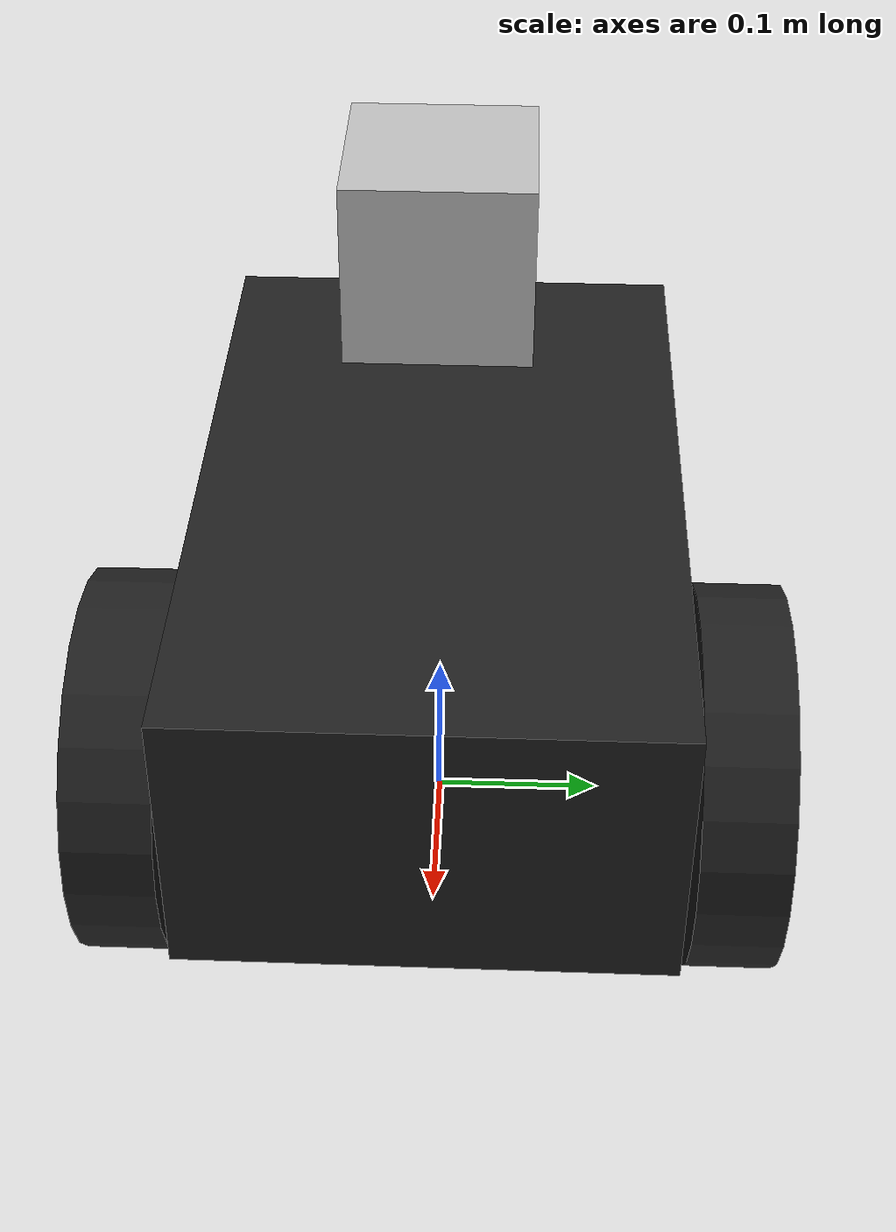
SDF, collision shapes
<?xml version='1.0'?>
<sdf version='1.6'>
  <model name="my_robot">
     <static>false</static>
     <link name='chassis'>
      <pose frame=''>-0 -0 0.16 0 -0 0</pose>
      <inertial>
        <mass>3.6</mass>
        <inertia>
          <ixx>0</ixx>
          <iyy>0</iyy>
          <izz>0</izz>
          <ixy>0</ixy>
          <ixz>0</ixz>
          <iyz>0</iyz>
        </inertia>
      </inertial>
      <self_collide>0</self_collide>
      <kinematic>0</kinematic>
      <visual name='castor_visual'>
        <pose frame=''>-0.2 0 -0.12 0 -0 0</pose>
        <geometry>
          <sphere>
            <radius>0.04</radius>
          </sphere>
        </geometry>
        <material>
          <script>
            <uri>file://media/materials/scripts/gazebo.material</uri>
            <name>Gazebo/FlatBlack</name>
          </script>
          <ambient>0.1 0.1 0.1 1</ambient>
          <diffuse>0.1 0.1 0.1 1</diffuse>
          <specular>0.01 0.01 0.01 1</specular>
          <emissive>0 0 0 1</emissive>
        </material>
        <transparency>0</transparency>
        <cast_shadows>1</cast_shadows>
      </visual>
      <visual name='visual'>
        <pose frame=''>0 0 0.04 0 -0 0</pose>
        <geometry>
          <mesh>
            <uri>model://pioneer2dx/meshes/chassis.dae</uri>
          </mesh>
        </geometry>
        <cast_shadows>1</cast_shadows>
        <transparency>0</transparency>
      </visual>
      <collision name='castor_collision'>
        <laser_retro>0</laser_retro>
        <max_contacts>10</max_contacts>
        <pose frame=''>-0.2 0 -0.12 0 -0 0</pose>
        <geometry>
          <sphere>
            <radius>0.04</radius>
          </sphere>
        </geometry>
        <surface>
          <friction>
            <ode>
              <mu>0</mu>
              <mu2>0</mu2>
              <fdir1>0 0 0</fdir1>
              <slip1>1</slip1>
              <slip2>1</slip2>
            </ode>
            <torsional>
              <coefficient>1</coefficient>
              <patch_radius>0</patch_radius>
              <surface_radius>0</surface_radius>
              <use_patch_radius>1</use_patch_radius>
              <ode>
                <slip>0</slip>
              </ode>
            </torsional>
          </friction>
          <bounce>
            <restitution_coefficient>0</restitution_coefficient>
            <threshold>1e+06</threshold>
          </bounce>
          <contact>
            <collide_without_contact>0</collide_without_contact>
            <collide_without_contact_bitmask>1</collide_without_contact_bitmask>
            <collide_bitmask>1</collide_bitmask>
            <ode>
              <soft_cfm>0</soft_cfm>
              <soft_erp>0.2</soft_erp>
              <kp>1e+13</kp>
              <kd>1</kd>
              <max_vel>0.01</max_vel>
              <min_depth>0</min_depth>
            </ode>
            <bullet>
              <split_impulse>1</split_impulse>
              <split_impulse_penetration_threshold>-0.01</split_impulse_penetration_threshold>
              <soft_cfm>0</soft_cfm>
              <soft_erp>0.2</soft_erp>
              <kp>1e+13</kp>
              <kd>1</kd>
            </bullet>
          </contact>
        </surface>
      </collision>
      <collision name='collision'>
        <laser_retro>0</laser_retro>
        <max_contacts>10</max_contacts>
        <pose frame=''>0 0 0 0 -0 0</pose>
        <geometry>
          <box>
            <size>0.445 0.277 0.17</size>
          </box>
        </geometry>
        <surface>
          <friction>
            <ode>
              <mu>1</mu>
              <mu2>1</mu2>
              <fdir1>0 0 0</fdir1>
              <slip1>0</slip1>
              <slip2>0</slip2>
            </ode>
            <torsional>
              <coefficient>1</coefficient>
              <patch_radius>0</patch_radius>
              <surface_radius>0</surface_radius>
              <use_patch_radius>1</use_patch_radius>
              <ode>
                <slip>0</slip>
              </ode>
            </torsional>
          </friction>
          <bounce>
            <restitution_coefficient>0</restitution_coefficient>
            <threshold>1e+06</threshold>
          </bounce>
          <contact>
            <collide_without_contact>0</collide_without_contact>
            <collide_without_contact_bitmask>1</collide_without_contact_bitmask>
            <collide_bitmask>1</collide_bitmask>
            <ode>
              <soft_cfm>0</soft_cfm>
              <soft_erp>0.2</soft_erp>
              <kp>1e+13</kp>
              <kd>1</kd>
              <max_vel>0.01</max_vel>
              <min_depth>0</min_depth>
            </ode>
            <bullet>
              <split_impulse>1</split_impulse>
              <split_impulse_penetration_threshold>-0.01</split_impulse_penetration_threshold>
              <soft_cfm>0</soft_cfm>
              <soft_erp>0.2</soft_erp>
              <kp>1e+13</kp>
              <kd>1</kd>
            </bullet>
          </contact>
        </surface>
      </collision>
    </link>

    <link name='left_wheel'>
      <pose frame=''>0.1 -0.17 0.11 0.000239 1.5707 1.57094</pose>
      <inertial>
        <mass>1.5</mass>
        <inertia>
          <ixx>0.0051</ixx>
          <iyy>0.0051</iyy>
          <izz>0.009</izz>
          <ixy>0</ixy>
          <ixz>0</ixz>
          <iyz>0</iyz>
        </inertia>
      </inertial>
      <self_collide>0</self_collide>
      <kinematic>0</kinematic>
      <visual name='visual'>
        <geometry>
          <cylinder>
            <radius>0.11</radius>
            <length>0.05</length>
          </cylinder>
        </geometry>
        <material>
          <script>
            <uri>file://media/materials/scripts/gazebo.material</uri>
            <name>Gazebo/FlatBlack</name>
          </script>
          <ambient>0.1 0.1 0.1 1</ambient>
          <diffuse>0.1 0.1 0.1 1</diffuse>
          <specular>0.01 0.01 0.01 1</specular>
          <emissive>0 0 0 1</emissive>
        </material>
        <pose frame=''>0 0 0 0 -0 0</pose>
        <transparency>0</transparency>
        <cast_shadows>1</cast_shadows>
      </visual>
      <collision name='collision'>
        <laser_retro>0</laser_retro>
        <max_contacts>10</max_contacts>
        <pose frame=''>0 0 0 0 -0 0</pose>
        <geometry>
          <cylinder>
            <radius>0.11</radius>
            <length>0.05</length>
          </cylinder>
        </geometry>
        <surface>
          <friction>
            <ode>
              <mu>100000</mu>
              <mu2>100000</mu2>
              <fdir1>0 0 0</fdir1>
              <slip1>0</slip1>
              <slip2>0</slip2>
            </ode>
            <torsional>
              <coefficient>1</coefficient>
              <patch_radius>0</patch_radius>
              <surface_radius>0</surface_radius>
              <use_patch_radius>1</use_patch_radius>
              <ode>
                <slip>0</slip>
              </ode>
            </torsional>
          </friction>
          <bounce>
            <restitution_coefficient>0</restitution_coefficient>
            <threshold>1e+06</threshold>
          </bounce>
          <contact>
            <collide_without_contact>0</collide_without_contact>
            <collide_without_contact_bitmask>1</collide_without_contact_bitmask>
            <collide_bitmask>1</collide_bitmask>
            <ode>
              <soft_cfm>0</soft_cfm>
              <soft_erp>0.2</soft_erp>
              <kp>1e+13</kp>
              <kd>1</kd>
              <max_vel>0.01</max_vel>
              <min_depth>0</min_depth>
            </ode>
            <bullet>
              <split_impulse>1</split_impulse>
              <split_impulse_penetration_threshold>-0.01</split_impulse_penetration_threshold>
              <soft_cfm>0</soft_cfm>
              <soft_erp>0.2</soft_erp>
              <kp>1e+13</kp>
              <kd>1</kd>
            </bullet>
          </contact>
        </surface>
      </collision>
    </link>
    <link name='right_wheel'>
      <pose frame=''>0.1 0.17 0.11 0.000239 1.5707 1.57094</pose>
      <inertial>
        <mass>1.5</mass>
        <inertia>
          <ixx>0.0051</ixx>
          <iyy>0.0890</iyy>
          <izz>0.009</izz>
          <ixy>0</ixy>
          <ixz>0</ixz>
          <iyz>0</iyz>
        </inertia>
      </inertial>
      <self_collide>0</self_collide>
      <kinematic>0</kinematic>
      <visual name='visual'>
        <geometry>
          <cylinder>
            <radius>0.11</radius>
            <length>0.05</length>
          </cylinder>
        </geometry>
        <material>
          <script>
            <uri>file://media/materials/scripts/gazebo.material</uri>
            <name>Gazebo/FlatBlack</name>
          </script>
          <ambient>0.1 0.1 0.1 1</ambient>
          <diffuse>0.1 0.1 0.1 1</diffuse>
          <specular>0.01 0.01 0.01 1</specular>
          <emissive>0 0 0 1</emissive>
        </material>
        <pose frame=''>0 0 0 0 -0 0</pose>
        <transparency>0</transparency>
        <cast_shadows>1</cast_shadows>
      </visual>
      <collision name='collision'>
        <laser_retro>0</laser_retro>
        <max_contacts>10</max_contacts>
        <pose frame=''>0 0 0 0 -0 0</pose>
        <geometry>
          <cylinder>
            <radius>0.11</radius>
            <length>0.05</length>
          </cylinder>
        </geometry>
        <surface>
          <friction>
            <ode>
              <mu>100000</mu>
              <mu2>100000</mu2>
              <fdir1>0 0 0</fdir1>
              <slip1>0</slip1>
              <slip2>0</slip2>
            </ode>
            <torsional>
              <coefficient>1</coefficient>
              <patch_radius>0</patch_radius>
              <surface_radius>0</surface_radius>
              <use_patch_radius>1</use_patch_radius>
              <ode>
                <slip>0</slip>
              </ode>
            </torsional>
          </friction>
          <bounce>
            <restitution_coefficient>0</restitution_coefficient>
            <threshold>1e+06</threshold>
          </bounce>
          <contact>
            <collide_without_contact>0</collide_without_contact>
            <collide_without_contact_bitmask>1</collide_without_contact_bitmask>
            <collide_bitmask>1</collide_bitmask>
            <ode>
              <soft_cfm>0</soft_cfm>
              <soft_erp>0.2</soft_erp>
              <kp>1e+13</kp>
              <kd>1</kd>
              <max_vel>0.01</max_vel>
              <min_depth>0</min_depth>
            </ode>
            <bullet>
              <split_impulse>1</split_impulse>
              <split_impulse_penetration_threshold>-0.01</split_impulse_penetration_threshold>
              <soft_cfm>0</soft_cfm>
              <soft_erp>0.2</soft_erp>
              <kp>1e+13</kp>
              <kd>1</kd>
            </bullet>
          </contact>
        </surface>
      </collision>
    </link>
        <joint name='left_wheel_hinge' type='revolute'>
      <parent>chassis</parent>
      <child>left_wheel</child>
      <pose frame=''>0 0 -0.03 0 -0 0</pose>
      <axis>
        <xyz>0 1 0</xyz>
        <use_parent_model_frame>1</use_parent_model_frame>
        <limit>
          <lower>-1e+16</lower>
          <upper>1e+16</upper>
          <effort>-1</effort>
          <velocity>-1</velocity>
        </limit>
        <dynamics>
          <spring_reference>0</spring_reference>
          <spring_stiffness>0</spring_stiffness>
          <damping>0</damping>
          <friction>0</friction>
        </dynamics>
      </axis>
      <physics>
        <ode>
          <limit>
            <cfm>0</cfm>
            <erp>0.2</erp>
          </limit>
          <suspension>
            <cfm>0</cfm>
            <erp>0.2</erp>
          </suspension>
        </ode>
      </physics>
    </joint>

   <joint name='right_wheel_hinge' type='revolute'>
      <parent>chassis</parent>
      <child>right_wheel</child>
      <pose frame=''>0 0 0.03 0 -0 0</pose>
      <axis>
        <xyz>0 1 0</xyz>
        <use_parent_model_frame>1</use_parent_model_frame>
        <limit>
          <lower>-1e+16</lower>
          <upper>1e+16</upper>
          <effort>-1</effort>
          <velocity>-1</velocity>
        </limit>
        <dynamics>
          <spring_reference>0</spring_reference>
          <spring_stiffness>0</spring_stiffness>
          <damping>0</damping>
          <friction>0</friction>
        </dynamics>
      </axis>
      <physics>
        <ode>
          <limit>
            <cfm>0</cfm>
            <erp>0.2</erp>
          </limit>
          <suspension>
            <cfm>0</cfm>
            <erp>0.2</erp>
          </suspension>
        </ode>
      </physics>
    </joint>

      <plugin name="differential_drive_controller" filename="libgazebo_ros_diff_drive.so">
         <alwaysOn>true</alwaysOn>
         <updateRate>20</updateRate>
         <leftJoint>left_wheel_hinge</leftJoint>
         <rightJoint>right_wheel_hinge</rightJoint>
         <wheelSeparation>0.39</wheelSeparation>
         <wheelDiameter>0.15</wheelDiameter>
         <wheelTorque>20</wheelTorque>
         <commandTopic>/cmd_vel</commandTopic>
         <odometryTopic>/odom</odometryTopic>
         <odometryFrame>/odom</odometryFrame>
         <publishTf>1</publishTf>
         <publishWheelJointState>true</publishWheelJointState>
         <robotBaseFrame>base_link</robotBaseFrame>
      </plugin>

<link name='hokuyo_link'>
         <pose frame=''>0 0 0.40 0 0 -0</pose>
              <inertial>
        <mass>0.1</mass>
      </inertial>
      <collision name='collision'>
        <geometry>
          <box>
            <size>0.1 0.1 0.1</size>
          </box>
        </geometry>
      </collision>
      <visual name='visual'>
        <geometry>
          <mesh>
            <uri>model://hokuyo/meshes/hokuyo.dae</uri>
          </mesh>
        </geometry>
      </visual>
       <sensor type="ray" name="head_hokuyo_sensor">
			<pose>0 0 0 0 0 0</pose>
			<visualize>true</visualize>
			<update_rate>30</update_rate>
			<ray>
				<scan>
					<horizontal>
						<samples>360</samples>
						<resolution>1</resolution>
						<min_angle>-3.14</min_angle>
						<max_angle>3.14</max_angle>
					</horizontal>
				</scan>
				<range>
					<min>0.10</min>
					<max>10.0</max>
					<resolution>0.01</resolution>
				</range>
				<noise>
					<type>gaussian</type>
					<mean>0.0</mean>
					<stddev>0.01</stddev>
				</noise>
			</ray>
			<plugin name="gazebo_ros_head_hokuyo_controller" filename="libgazebo_ros_laser.so">
				<topicName>/scan</topicName>
				<frameName>hokuyo_link</frameName>
			</plugin>
		</sensor>
             </link>

       <joint type="fixed" name="hokuyo_joint">
         <pose>0.15 0 0.3 0 0 0</pose>
         <child>hokuyo_link</child>
         <parent>chassis</parent>
        <axis>
        <xyz>0 1 0</xyz>
      </axis>
     </joint>

   </model>
</sdf>
